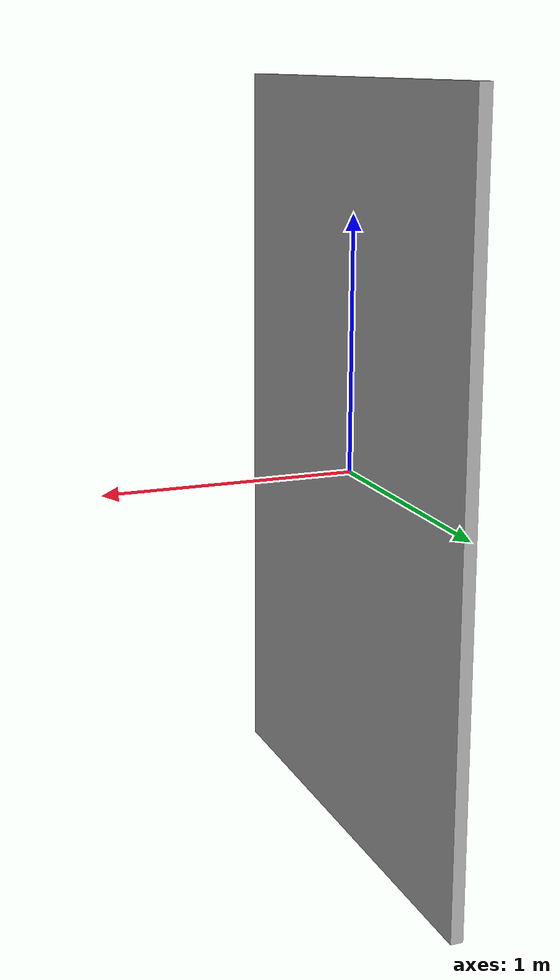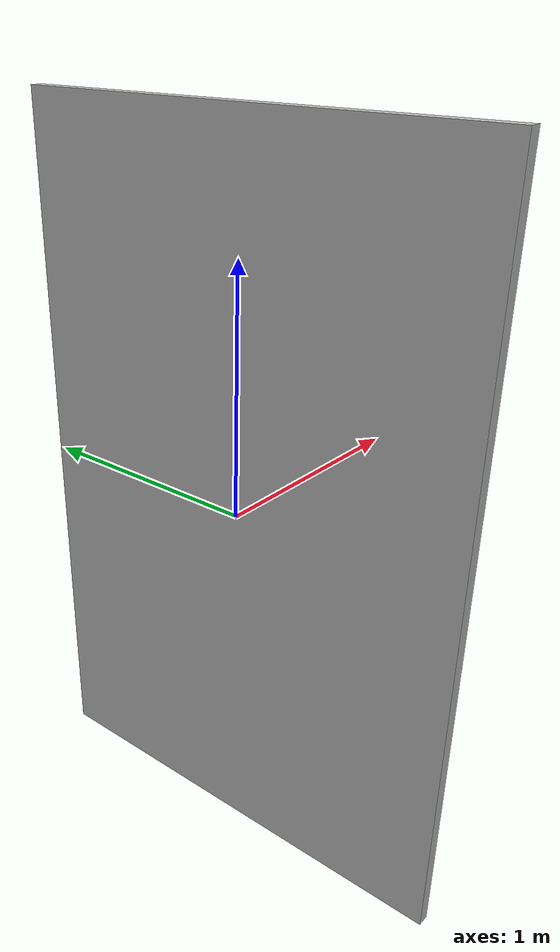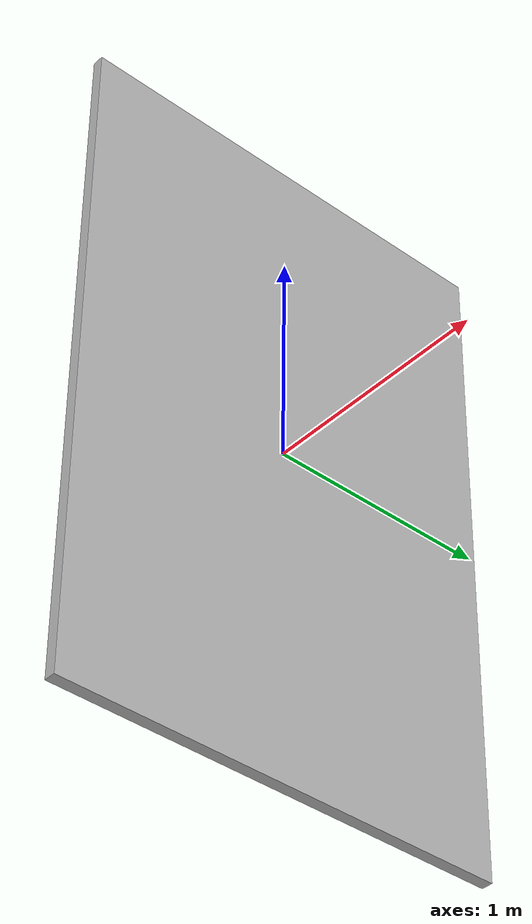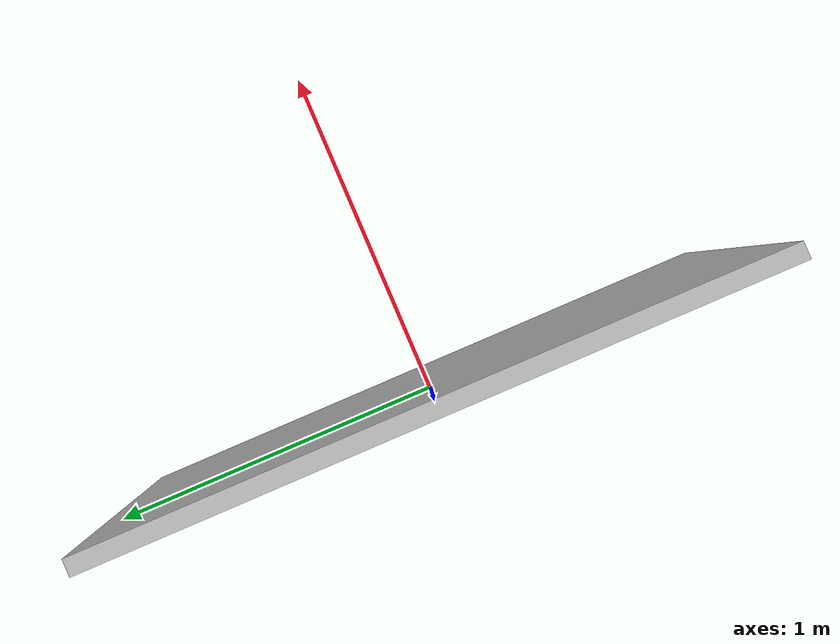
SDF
<?xml version = "1.0"?>

<sdf version='1.4'>

<model name="wall2p">

	<static>true</static>

	<link name="wall1">

		<pose>0 0 0 0 0 1.57</pose>

		<collision name="collision">
			<geometry>
				<box>
					<size>2 0.05 3</size>
				</box>
			</geometry>
		</collision>

		<visual name="visual">
			<geometry>
				<box>
        			<size>2 0.05 3</size>
        		</box>
    		</geometry>

		</visual>
	</link>
</model>

</sdf>
